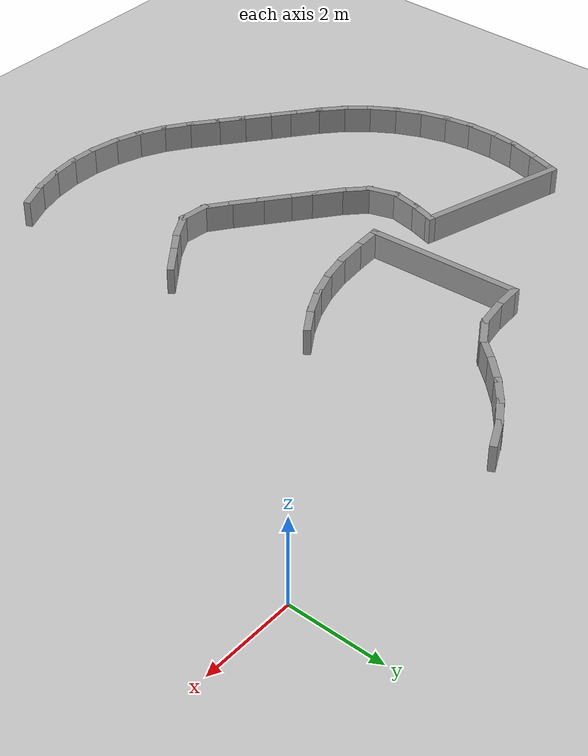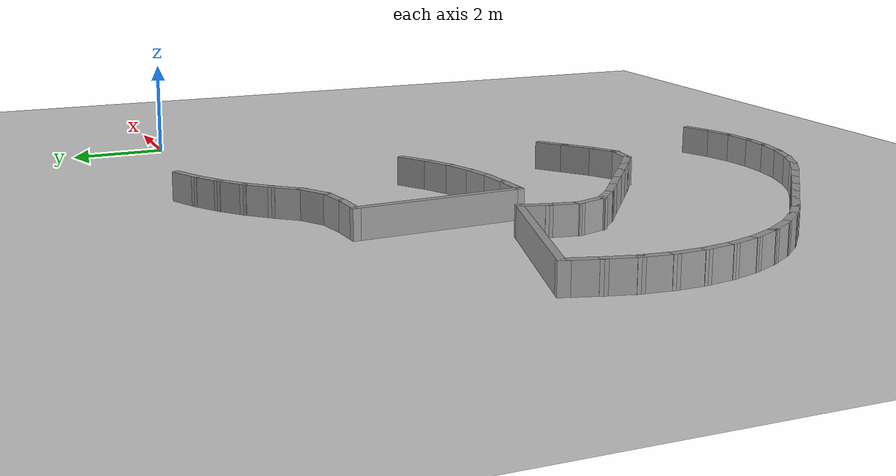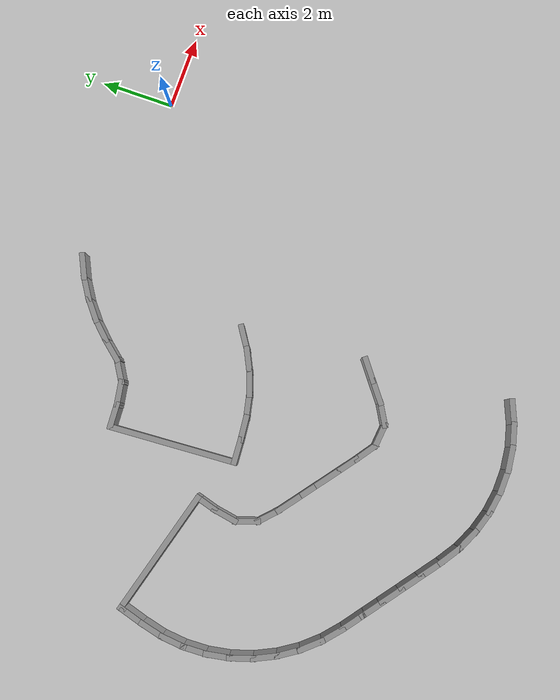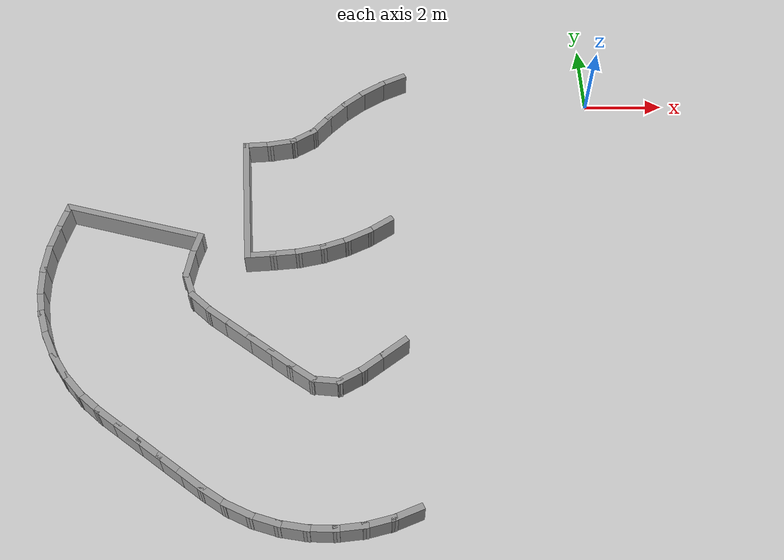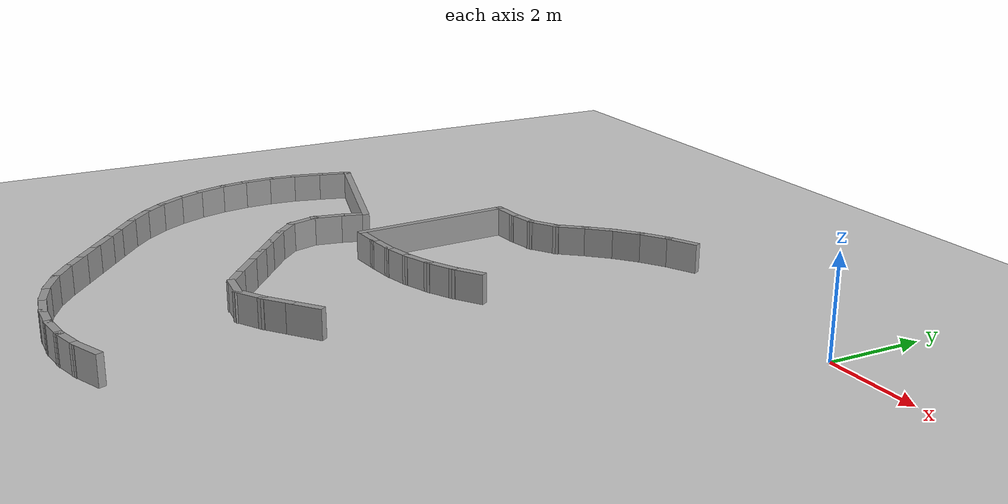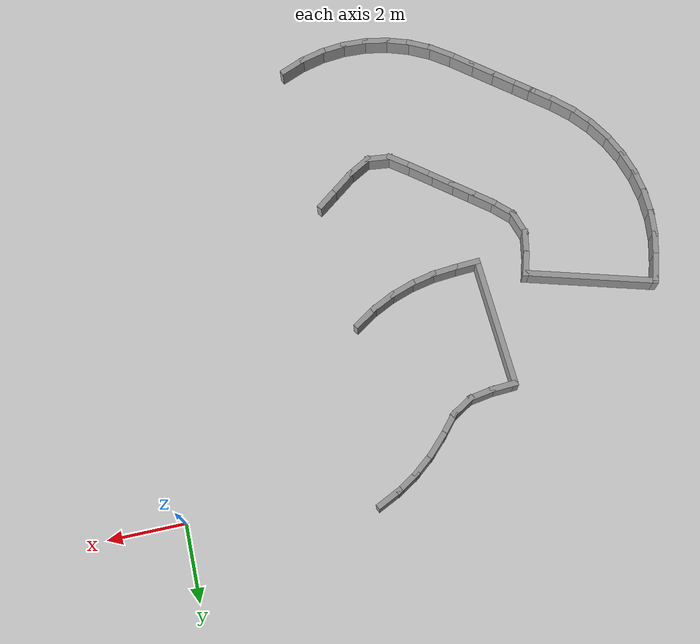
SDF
<sdf version="1.7">
 <world name="default">
  <model name="ground_plane">
   <static>1</static>
   <link name="link">
    <collision name="collision">
     <geometry><plane><normal>0 0 1</normal><size>100 100</size></plane></geometry>
     <surface><friction><ode><mu>100</mu><mu2>50</mu2></ode></friction></surface>
    </collision>
    <visual name="visual">
     <cast_shadows>0</cast_shadows>
     <geometry><plane><normal>0 0 1</normal><size>100 100</size></plane></geometry>
     <material>
      <script><uri>file://media/materials/scripts/gazebo.material</uri><name>Gazebo/Grey</name></script>
     </material>
    </visual>
   </link>
  </model>
  <model name="rand_turn_00">
   <link name="Wall_0">
    <collision name="Wall_0_Collision">
     <geometry><box><size>0.7500 0.1500 0.6000</size></box></geometry>
     <pose>0 0 0.3000 0 -0 0</pose>
    </collision>
    <visual name="Wall_0_Visual">
     <pose>0 0 0.3000 0 -0 0</pose>
     <geometry><box><size>0.7500 0.1500 0.6000</size></box></geometry>
     <material>
      <script><uri>file://media/materials/scripts/gazebo.material</uri><name>Gazebo/Grey</name></script>
      <ambient>1 1 1 1</ambient>
     </material>
    </visual>
    <pose>-8.5441 -1.6204 0 0 -0 0.05897</pose>
   </link>
   <link name="Wall_1">
    <collision name="Wall_1_Collision">
     <geometry><box><size>0.7471 0.1500 0.6000</size></box></geometry>
     <pose>0 0 0.3000 0 -0 0</pose>
    </collision>
    <visual name="Wall_1_Visual">
     <pose>0 0 0.3000 0 -0 0</pose>
     <geometry><box><size>0.7471 0.1500 0.6000</size></box></geometry>
     <material>
      <script><uri>file://media/materials/scripts/gazebo.material</uri><name>Gazebo/Grey</name></script>
      <ambient>1 1 1 1</ambient>
     </material>
    </visual>
    <pose>-7.9503 -1.5525 0 0 -0 0.16929</pose>
   </link>
   <link name="Wall_2">
    <collision name="Wall_2_Collision">
     <geometry><box><size>0.7461 0.1500 0.6000</size></box></geometry>
     <pose>0 0 0.3000 0 -0 0</pose>
    </collision>
    <visual name="Wall_2_Visual">
     <pose>0 0 0.3000 0 -0 0</pose>
     <geometry><box><size>0.7461 0.1500 0.6000</size></box></geometry>
     <material>
      <script><uri>file://media/materials/scripts/gazebo.material</uri><name>Gazebo/Grey</name></script>
      <ambient>1 1 1 1</ambient>
     </material>
    </visual>
    <pose>-7.4023 -1.3457 0 0 -0 0.55249</pose>
   </link>
   <link name="Wall_3">
    <collision name="Wall_3_Collision">
     <geometry><box><size>0.7493 0.1500 0.6000</size></box></geometry>
     <pose>0 0 0.3000 0 -0 0</pose>
    </collision>
    <visual name="Wall_3_Visual">
     <pose>0 0 0.3000 0 -0 0</pose>
     <geometry><box><size>0.7493 0.1500 0.6000</size></box></geometry>
     <material>
      <script><uri>file://media/materials/scripts/gazebo.material</uri><name>Gazebo/Grey</name></script>
      <ambient>1 1 1 1</ambient>
     </material>
    </visual>
    <pose>-6.9553 -0.9603 0 0 -0 0.86976</pose>
   </link>
   <link name="Wall_4">
    <collision name="Wall_4_Collision">
     <geometry><box><size>0.7496 0.1500 0.6000</size></box></geometry>
     <pose>0 0 0.3000 0 -0 0</pose>
    </collision>
    <visual name="Wall_4_Visual">
     <pose>0 0 0.3000 0 -0 0</pose>
     <geometry><box><size>0.7496 0.1500 0.6000</size></box></geometry>
     <material>
      <script><uri>file://media/materials/scripts/gazebo.material</uri><name>Gazebo/Grey</name></script>
      <ambient>1 1 1 1</ambient>
     </material>
    </visual>
    <pose>-6.5543 -0.5152 0 0 -0 0.80530</pose>
   </link>
   <link name="Wall_5">
    <collision name="Wall_5_Collision">
     <geometry><box><size>0.7496 0.1500 0.6000</size></box></geometry>
     <pose>0 0 0.3000 0 -0 0</pose>
    </collision>
    <visual name="Wall_5_Visual">
     <pose>0 0 0.3000 0 -0 0</pose>
     <geometry><box><size>0.7496 0.1500 0.6000</size></box></geometry>
     <material>
      <script><uri>file://media/materials/scripts/gazebo.material</uri><name>Gazebo/Grey</name></script>
      <ambient>1 1 1 1</ambient>
     </material>
    </visual>
    <pose>-6.1148 -0.1088 0 0 -0 0.68736</pose>
   </link>
   <link name="Wall_6">
    <collision name="Wall_6_Collision">
     <geometry><box><size>0.7496 0.1500 0.6000</size></box></geometry>
     <pose>0 0 0.3000 0 -0 0</pose>
    </collision>
    <visual name="Wall_6_Visual">
     <pose>0 0 0.3000 0 -0 0</pose>
     <geometry><box><size>0.7496 0.1500 0.6000</size></box></geometry>
     <material>
      <script><uri>file://media/materials/scripts/gazebo.material</uri><name>Gazebo/Grey</name></script>
      <ambient>1 1 1 1</ambient>
     </material>
    </visual>
    <pose>-5.6306 0.2431 0 0 -0 0.56943</pose>
   </link>
   <link name="Wall_7">
    <collision name="Wall_7_Collision">
     <geometry><box><size>0.7496 0.1500 0.6000</size></box></geometry>
     <pose>0 0 0.3000 0 -0 0</pose>
    </collision>
    <visual name="Wall_7_Visual">
     <pose>0 0 0.3000 0 -0 0</pose>
     <geometry><box><size>0.7496 0.1500 0.6000</size></box></geometry>
     <material>
      <script><uri>file://media/materials/scripts/gazebo.material</uri><name>Gazebo/Grey</name></script>
      <ambient>1 1 1 1</ambient>
     </material>
    </visual>
    <pose>-5.1084 0.5355 0 0 -0 0.45149</pose>
   </link>
   <link name="Wall_42">
    <collision name="Wall_42_Collision">
     <geometry><box><size>0.7495 0.1500 0.6000</size></box></geometry>
     <pose>0 0 0.3000 0 -0 0</pose>
    </collision>
    <visual name="Wall_42_Visual">
     <pose>0 0 0.3000 0 -0 0</pose>
     <geometry><box><size>0.7495 0.1500 0.6000</size></box></geometry>
     <material>
      <script><uri>file://media/materials/scripts/gazebo.material</uri><name>Gazebo/Grey</name></script>
      <ambient>1 1 1 1</ambient>
     </material>
    </visual>
    <pose>-5.0606 -11.4234 0 0 -0 -2.75458</pose>
   </link>
   <link name="Wall_43">
    <collision name="Wall_43_Collision">
     <geometry><box><size>0.7494 0.1500 0.6000</size></box></geometry>
     <pose>0 0 0.3000 0 -0 0</pose>
    </collision>
    <visual name="Wall_43_Visual">
     <pose>0 0 0.3000 0 -0 0</pose>
     <geometry><box><size>0.7494 0.1500 0.6000</size></box></geometry>
     <material>
      <script><uri>file://media/materials/scripts/gazebo.material</uri><name>Gazebo/Grey</name></script>
      <ambient>1 1 1 1</ambient>
     </material>
    </visual>
    <pose>-5.6288 -11.6099 0 0 -0 -2.89441</pose>
   </link>
   <link name="Wall_44">
    <collision name="Wall_44_Collision">
     <geometry><box><size>0.7495 0.1500 0.6000</size></box></geometry>
     <pose>0 0 0.3000 0 -0 0</pose>
    </collision>
    <visual name="Wall_44_Visual">
     <pose>0 0 0.3000 0 -0 0</pose>
     <geometry><box><size>0.7495 0.1500 0.6000</size></box></geometry>
     <material>
      <script><uri>file://media/materials/scripts/gazebo.material</uri><name>Gazebo/Grey</name></script>
      <ambient>1 1 1 1</ambient>
     </material>
    </visual>
    <pose>-6.2175 -11.7149 0 0 -0 -3.03569</pose>
   </link>
   <link name="Wall_45">
    <collision name="Wall_45_Collision">
     <geometry><box><size>0.7495 0.1500 0.6000</size></box></geometry>
     <pose>0 0 0.3000 0 -0 0</pose>
    </collision>
    <visual name="Wall_45_Visual">
     <pose>0 0 0.3000 0 -0 0</pose>
     <geometry><box><size>0.7495 0.1500 0.6000</size></box></geometry>
     <material>
      <script><uri>file://media/materials/scripts/gazebo.material</uri><name>Gazebo/Grey</name></script>
      <ambient>1 1 1 1</ambient>
     </material>
    </visual>
    <pose>-6.8151 -11.7357 0 0 -0 3.10511</pose>
   </link>
   <link name="Wall_46">
    <collision name="Wall_46_Collision">
     <geometry><box><size>0.7495 0.1500 0.6000</size></box></geometry>
     <pose>0 0 0.3000 0 -0 0</pose>
    </collision>
    <visual name="Wall_46_Visual">
     <pose>0 0 0.3000 0 -0 0</pose>
     <geometry><box><size>0.7495 0.1500 0.6000</size></box></geometry>
     <material>
      <script><uri>file://media/materials/scripts/gazebo.material</uri><name>Gazebo/Grey</name></script>
      <ambient>1 1 1 1</ambient>
     </material>
    </visual>
    <pose>-7.4097 -11.6722 0 0 -0 2.96528</pose>
   </link>
   <link name="Wall_47">
    <collision name="Wall_47_Collision">
     <geometry><box><size>0.7495 0.1500 0.6000</size></box></geometry>
     <pose>0 0 0.3000 0 -0 0</pose>
    </collision>
    <visual name="Wall_47_Visual">
     <pose>0 0 0.3000 0 -0 0</pose>
     <geometry><box><size>0.7495 0.1500 0.6000</size></box></geometry>
     <material>
      <script><uri>file://media/materials/scripts/gazebo.material</uri><name>Gazebo/Grey</name></script>
      <ambient>1 1 1 1</ambient>
     </material>
    </visual>
    <pose>-7.9894 -11.5256 0 0 -0 2.82276</pose>
   </link>
   <link name="Wall_48">
    <collision name="Wall_48_Collision">
     <geometry><box><size>0.7494 0.1500 0.6000</size></box></geometry>
     <pose>0 0 0.3000 0 -0 0</pose>
    </collision>
    <visual name="Wall_48_Visual">
     <pose>0 0 0.3000 0 -0 0</pose>
     <geometry><box><size>0.7494 0.1500 0.6000</size></box></geometry>
     <material>
      <script><uri>file://media/materials/scripts/gazebo.material</uri><name>Gazebo/Grey</name></script>
      <ambient>1 1 1 1</ambient>
     </material>
    </visual>
    <pose>-8.5426 -11.2986 0 0 -0 2.68162</pose>
   </link>
   <link name="Wall_49">
    <collision name="Wall_49_Collision">
     <geometry><box><size>0.7495 0.1500 0.6000</size></box></geometry>
     <pose>0 0 0.3000 0 -0 0</pose>
    </collision>
    <visual name="Wall_49_Visual">
     <pose>0 0 0.3000 0 -0 0</pose>
     <geometry><box><size>0.7495 0.1500 0.6000</size></box></geometry>
     <material>
      <script><uri>file://media/materials/scripts/gazebo.material</uri><name>Gazebo/Grey</name></script>
      <ambient>1 1 1 1</ambient>
     </material>
    </visual>
    <pose>-9.0584 -10.9962 0 0 -0 2.54093</pose>
   </link>
   <link name="Wall_50">
    <collision name="Wall_50_Collision">
     <geometry><box><size>0.7500 0.1500 0.6000</size></box></geometry>
     <pose>0 0 0.3000 0 -0 0</pose>
    </collision>
    <visual name="Wall_50_Visual">
     <pose>0 0 0.3000 0 -0 0</pose>
     <geometry><box><size>0.7500 0.1500 0.6000</size></box></geometry>
     <material>
      <script><uri>file://media/materials/scripts/gazebo.material</uri><name>Gazebo/Grey</name></script>
      <ambient>1 1 1 1</ambient>
     </material>
    </visual>
    <pose>-9.5429 -10.6431 0 0 -0 2.48282</pose>
   </link>
   <link name="Wall_51">
    <collision name="Wall_51_Collision">
     <geometry><box><size>0.7500 0.1500 0.6000</size></box></geometry>
     <pose>0 0 0.3000 0 -0 0</pose>
    </collision>
    <visual name="Wall_51_Visual">
     <pose>0 0 0.3000 0 -0 0</pose>
     <geometry><box><size>0.7500 0.1500 0.6000</size></box></geometry>
     <material>
      <script><uri>file://media/materials/scripts/gazebo.material</uri><name>Gazebo/Grey</name></script>
      <ambient>1 1 1 1</ambient>
     </material>
    </visual>
    <pose>-10.0174 -10.2758 0 0 -0 2.48282</pose>
   </link>
   <link name="Wall_52">
    <collision name="Wall_52_Collision">
     <geometry><box><size>0.7500 0.1500 0.6000</size></box></geometry>
     <pose>0 0 0.3000 0 -0 0</pose>
    </collision>
    <visual name="Wall_52_Visual">
     <pose>0 0 0.3000 0 -0 0</pose>
     <geometry><box><size>0.7500 0.1500 0.6000</size></box></geometry>
     <material>
      <script><uri>file://media/materials/scripts/gazebo.material</uri><name>Gazebo/Grey</name></script>
      <ambient>1 1 1 1</ambient>
     </material>
    </visual>
    <pose>-10.4918 -9.9086 0 0 -0 2.48282</pose>
   </link>
   <link name="Wall_53">
    <collision name="Wall_53_Collision">
     <geometry><box><size>0.7500 0.1500 0.6000</size></box></geometry>
     <pose>0 0 0.3000 0 -0 0</pose>
    </collision>
    <visual name="Wall_53_Visual">
     <pose>0 0 0.3000 0 -0 0</pose>
     <geometry><box><size>0.7500 0.1500 0.6000</size></box></geometry>
     <material>
      <script><uri>file://media/materials/scripts/gazebo.material</uri><name>Gazebo/Grey</name></script>
      <ambient>1 1 1 1</ambient>
     </material>
    </visual>
    <pose>-10.9663 -9.5413 0 0 -0 2.48282</pose>
   </link>
   <link name="Wall_54">
    <collision name="Wall_54_Collision">
     <geometry><box><size>0.7500 0.1500 0.6000</size></box></geometry>
     <pose>0 0 0.3000 0 -0 0</pose>
    </collision>
    <visual name="Wall_54_Visual">
     <pose>0 0 0.3000 0 -0 0</pose>
     <geometry><box><size>0.7500 0.1500 0.6000</size></box></geometry>
     <material>
      <script><uri>file://media/materials/scripts/gazebo.material</uri><name>Gazebo/Grey</name></script>
      <ambient>1 1 1 1</ambient>
     </material>
    </visual>
    <pose>-11.4406 -9.1739 0 0 -0 2.48247</pose>
   </link>
   <link name="Wall_55">
    <collision name="Wall_55_Collision">
     <geometry><box><size>0.7496 0.1500 0.6000</size></box></geometry>
     <pose>0 0 0.3000 0 -0 0</pose>
    </collision>
    <visual name="Wall_55_Visual">
     <pose>0 0 0.3000 0 -0 0</pose>
     <geometry><box><size>0.7496 0.1500 0.6000</size></box></geometry>
     <material>
      <script><uri>file://media/materials/scripts/gazebo.material</uri><name>Gazebo/Grey</name></script>
      <ambient>1 1 1 1</ambient>
     </material>
    </visual>
    <pose>-11.9011 -8.7901 0 0 -0 2.41105</pose>
   </link>
   <link name="Wall_56">
    <collision name="Wall_56_Collision">
     <geometry><box><size>0.7495 0.1500 0.6000</size></box></geometry>
     <pose>0 0 0.3000 0 -0 0</pose>
    </collision>
    <visual name="Wall_56_Visual">
     <pose>0 0 0.3000 0 -0 0</pose>
     <geometry><box><size>0.7495 0.1500 0.6000</size></box></geometry>
     <material>
      <script><uri>file://media/materials/scripts/gazebo.material</uri><name>Gazebo/Grey</name></script>
      <ambient>1 1 1 1</ambient>
     </material>
    </visual>
    <pose>-12.3190 -8.3621 0 0 -0 2.27726</pose>
   </link>
   <link name="Wall_57">
    <collision name="Wall_57_Collision">
     <geometry><box><size>0.7495 0.1500 0.6000</size></box></geometry>
     <pose>0 0 0.3000 0 -0 0</pose>
    </collision>
    <visual name="Wall_57_Visual">
     <pose>0 0 0.3000 0 -0 0</pose>
     <geometry><box><size>0.7495 0.1500 0.6000</size></box></geometry>
     <material>
      <script><uri>file://media/materials/scripts/gazebo.material</uri><name>Gazebo/Grey</name></script>
      <ambient>1 1 1 1</ambient>
     </material>
    </visual>
    <pose>-12.6762 -7.8823 0 0 -0 2.14447</pose>
   </link>
   <link name="Wall_58">
    <collision name="Wall_58_Collision">
     <geometry><box><size>0.7495 0.1500 0.6000</size></box></geometry>
     <pose>0 0 0.3000 0 -0 0</pose>
    </collision>
    <visual name="Wall_58_Visual">
     <pose>0 0 0.3000 0 -0 0</pose>
     <geometry><box><size>0.7495 0.1500 0.6000</size></box></geometry>
     <material>
      <script><uri>file://media/materials/scripts/gazebo.material</uri><name>Gazebo/Grey</name></script>
      <ambient>1 1 1 1</ambient>
     </material>
    </visual>
    <pose>-12.9668 -7.3594 0 0 -0 2.01169</pose>
   </link>
   <link name="Wall_59">
    <collision name="Wall_59_Collision">
     <geometry><box><size>0.7496 0.1500 0.6000</size></box></geometry>
     <pose>0 0 0.3000 0 -0 0</pose>
    </collision>
    <visual name="Wall_59_Visual">
     <pose>0 0 0.3000 0 -0 0</pose>
     <geometry><box><size>0.7496 0.1500 0.6000</size></box></geometry>
     <material>
      <script><uri>file://media/materials/scripts/gazebo.material</uri><name>Gazebo/Grey</name></script>
      <ambient>1 1 1 1</ambient>
     </material>
    </visual>
    <pose>-13.1855 -6.8026 0 0 -0 1.87844</pose>
   </link>
   <link name="Wall_60">
    <collision name="Wall_60_Collision">
     <geometry><box><size>0.7495 0.1500 0.6000</size></box></geometry>
     <pose>0 0 0.3000 0 -0 0</pose>
    </collision>
    <visual name="Wall_60_Visual">
     <pose>0 0 0.3000 0 -0 0</pose>
     <geometry><box><size>0.7495 0.1500 0.6000</size></box></geometry>
     <material>
      <script><uri>file://media/materials/scripts/gazebo.material</uri><name>Gazebo/Grey</name></script>
      <ambient>1 1 1 1</ambient>
     </material>
    </visual>
    <pose>-13.3279 -6.2217 0 0 -0 1.74388</pose>
   </link>
   <link name="Wall_61">
    <collision name="Wall_61_Collision">
     <geometry><box><size>0.7495 0.1500 0.6000</size></box></geometry>
     <pose>0 0 0.3000 0 -0 0</pose>
    </collision>
    <visual name="Wall_61_Visual">
     <pose>0 0 0.3000 0 -0 0</pose>
     <geometry><box><size>0.7495 0.1500 0.6000</size></box></geometry>
     <material>
      <script><uri>file://media/materials/scripts/gazebo.material</uri><name>Gazebo/Grey</name></script>
      <ambient>1 1 1 1</ambient>
     </material>
    </visual>
    <pose>-13.3916 -5.6269 0 0 -0 1.61109</pose>
   </link>
   <link name="Wall_62">
    <collision name="Wall_62_Collision">
     <geometry><box><size>0.7495 0.1500 0.6000</size></box></geometry>
     <pose>0 0 0.3000 0 -0 0</pose>
    </collision>
    <visual name="Wall_62_Visual">
     <pose>0 0 0.3000 0 -0 0</pose>
     <geometry><box><size>0.7495 0.1500 0.6000</size></box></geometry>
     <material>
      <script><uri>file://media/materials/scripts/gazebo.material</uri><name>Gazebo/Grey</name></script>
      <ambient>1 1 1 1</ambient>
     </material>
    </visual>
    <pose>-13.3760 -5.0289 0 0 -0 1.47831</pose>
   </link>
   <link name="Wall_63">
    <collision name="Wall_63_Collision">
     <geometry><box><size>0.7496 0.1500 0.6000</size></box></geometry>
     <pose>0 0 0.3000 0 -0 0</pose>
    </collision>
    <visual name="Wall_63_Visual">
     <pose>0 0 0.3000 0 -0 0</pose>
     <geometry><box><size>0.7496 0.1500 0.6000</size></box></geometry>
     <material>
      <script><uri>file://media/materials/scripts/gazebo.material</uri><name>Gazebo/Grey</name></script>
      <ambient>1 1 1 1</ambient>
     </material>
    </visual>
    <pose>-13.2815 -4.4382 0 0 -0 1.34596</pose>
   </link>
   <link name="Wall_64">
    <collision name="Wall_64_Collision">
     <geometry><box><size>0.7500 0.1500 0.6000</size></box></geometry>
     <pose>0 0 0.3000 0 -0 0</pose>
    </collision>
    <visual name="Wall_64_Visual">
     <pose>0 0 0.3000 0 -0 0</pose>
     <geometry><box><size>0.7500 0.1500 0.6000</size></box></geometry>
     <material>
      <script><uri>file://media/materials/scripts/gazebo.material</uri><name>Gazebo/Grey</name></script>
      <ambient>1 1 1 1</ambient>
     </material>
    </visual>
    <pose>-13.1332 -3.8572 0 0 -0 1.29574</pose>
   </link>
   <link name="Wall_65">
    <collision name="Wall_65_Collision">
     <geometry><box><size>0.2202 0.1500 0.6000</size></box></geometry>
     <pose>0 0 0.3000 0 -0 0</pose>
    </collision>
    <visual name="Wall_65_Visual">
     <pose>0 0 0.3000 0 -0 0</pose>
     <geometry><box><size>0.2202 0.1500 0.6000</size></box></geometry>
     <material>
      <script><uri>file://media/materials/scripts/gazebo.material</uri><name>Gazebo/Grey</name></script>
      <ambient>1 1 1 1</ambient>
     </material>
    </visual>
    <pose>-13.0422 -3.5347 0 0 -0 1.29574</pose>
   </link>
   <link name="Wall_66">
    <collision name="Wall_66_Collision">
     <geometry><box><size>0.7500 0.1500 0.6000</size></box></geometry>
     <pose>0 0 0.3000 0 -0 0</pose>
    </collision>
    <visual name="Wall_66_Visual">
     <pose>0 0 0.3000 0 -0 0</pose>
     <geometry><box><size>0.7500 0.1500 0.6000</size></box></geometry>
     <material>
      <script><uri>file://media/materials/scripts/gazebo.material</uri><name>Gazebo/Grey</name></script>
      <ambient>1 1 1 1</ambient>
     </material>
    </visual>
    <pose>-8.3462 -4.9721 0 0 -0 0.05897</pose>
   </link>
   <link name="Wall_67">
    <collision name="Wall_67_Collision">
     <geometry><box><size>0.7497 0.1500 0.6000</size></box></geometry>
     <pose>0 0 0.3000 0 -0 0</pose>
    </collision>
    <visual name="Wall_67_Visual">
     <pose>0 0 0.3000 0 -0 0</pose>
     <geometry><box><size>0.7497 0.1500 0.6000</size></box></geometry>
     <material>
      <script><uri>file://media/materials/scripts/gazebo.material</uri><name>Gazebo/Grey</name></script>
      <ambient>1 1 1 1</ambient>
     </material>
    </visual>
    <pose>-7.7482 -4.9263 0 0 -0 0.09390</pose>
   </link>
   <link name="Wall_68">
    <collision name="Wall_68_Collision">
     <geometry><box><size>0.7496 0.1500 0.6000</size></box></geometry>
     <pose>0 0 0.3000 0 -0 0</pose>
    </collision>
    <visual name="Wall_68_Visual">
     <pose>0 0 0.3000 0 -0 0</pose>
     <geometry><box><size>0.7496 0.1500 0.6000</size></box></geometry>
     <material>
      <script><uri>file://media/materials/scripts/gazebo.material</uri><name>Gazebo/Grey</name></script>
      <ambient>1 1 1 1</ambient>
     </material>
    </visual>
    <pose>-7.1566 -4.8349 0 0 -0 0.21269</pose>
   </link>
   <link name="Wall_69">
    <collision name="Wall_69_Collision">
     <geometry><box><size>0.7496 0.1500 0.6000</size></box></geometry>
     <pose>0 0 0.3000 0 -0 0</pose>
    </collision>
    <visual name="Wall_69_Visual">
     <pose>0 0 0.3000 0 -0 0</pose>
     <geometry><box><size>0.7496 0.1500 0.6000</size></box></geometry>
     <material>
      <script><uri>file://media/materials/scripts/gazebo.material</uri><name>Gazebo/Grey</name></script>
      <ambient>1 1 1 1</ambient>
     </material>
    </visual>
    <pose>-6.5805 -4.6728 0 0 -0 0.33566</pose>
   </link>
   <link name="Wall_70">
    <collision name="Wall_70_Collision">
     <geometry><box><size>0.7496 0.1500 0.6000</size></box></geometry>
     <pose>0 0 0.3000 0 -0 0</pose>
    </collision>
    <visual name="Wall_70_Visual">
     <pose>0 0 0.3000 0 -0 0</pose>
     <geometry><box><size>0.7496 0.1500 0.6000</size></box></geometry>
     <material>
      <script><uri>file://media/materials/scripts/gazebo.material</uri><name>Gazebo/Grey</name></script>
      <ambient>1 1 1 1</ambient>
     </material>
    </visual>
    <pose>-6.0286 -4.4414 0 0 -0 0.45863</pose>
   </link>
   <link name="Wall_71">
    <collision name="Wall_71_Collision">
     <geometry><box><size>0.7496 0.1500 0.6000</size></box></geometry>
     <pose>0 0 0.3000 0 -0 0</pose>
    </collision>
    <visual name="Wall_71_Visual">
     <pose>0 0 0.3000 0 -0 0</pose>
     <geometry><box><size>0.7496 0.1500 0.6000</size></box></geometry>
     <material>
      <script><uri>file://media/materials/scripts/gazebo.material</uri><name>Gazebo/Grey</name></script>
      <ambient>1 1 1 1</ambient>
     </material>
    </visual>
    <pose>-5.5093 -4.1439 0 0 -0 0.58160</pose>
   </link>
   <link name="Wall_90">
    <collision name="Wall_90_Collision">
     <geometry><box><size>0.7500 0.1500 0.6000</size></box></geometry>
     <pose>0 0 0.3000 0 -0 0</pose>
    </collision>
    <visual name="Wall_90_Visual">
     <pose>0 0 0.3000 0 -0 0</pose>
     <geometry><box><size>0.7500 0.1500 0.6000</size></box></geometry>
     <material>
      <script><uri>file://media/materials/scripts/gazebo.material</uri><name>Gazebo/Grey</name></script>
      <ambient>1 1 1 1</ambient>
     </material>
    </visual>
    <pose>-5.2320 -7.5273 0 0 -0 -2.48869</pose>
   </link>
   <link name="Wall_91">
    <collision name="Wall_91_Collision">
     <geometry><box><size>0.7500 0.1500 0.6000</size></box></geometry>
     <pose>0 0 0.3000 0 -0 0</pose>
    </collision>
    <visual name="Wall_91_Visual">
     <pose>0 0 0.3000 0 -0 0</pose>
     <geometry><box><size>0.7500 0.1500 0.6000</size></box></geometry>
     <material>
      <script><uri>file://media/materials/scripts/gazebo.material</uri><name>Gazebo/Grey</name></script>
      <ambient>1 1 1 1</ambient>
     </material>
    </visual>
    <pose>-5.7086 -7.8917 0 0 -0 -2.48869</pose>
   </link>
   <link name="Wall_92">
    <collision name="Wall_92_Collision">
     <geometry><box><size>0.7440 0.1500 0.6000</size></box></geometry>
     <pose>0 0 0.3000 0 -0 0</pose>
    </collision>
    <visual name="Wall_92_Visual">
     <pose>0 0 0.3000 0 -0 0</pose>
     <geometry><box><size>0.7440 0.1500 0.6000</size></box></geometry>
     <material>
      <script><uri>file://media/materials/scripts/gazebo.material</uri><name>Gazebo/Grey</name></script>
      <ambient>1 1 1 1</ambient>
     </material>
    </visual>
    <pose>-6.2047 -8.2215 0 0 -0 -2.62196</pose>
   </link>
   <link name="Wall_93">
    <collision name="Wall_93_Collision">
     <geometry><box><size>0.7386 0.1500 0.6000</size></box></geometry>
     <pose>0 0 0.3000 0 -0 0</pose>
    </collision>
    <visual name="Wall_93_Visual">
     <pose>0 0 0.3000 0 -0 0</pose>
     <geometry><box><size>0.7386 0.1500 0.6000</size></box></geometry>
     <material>
      <script><uri>file://media/materials/scripts/gazebo.material</uri><name>Gazebo/Grey</name></script>
      <ambient>1 1 1 1</ambient>
     </material>
    </visual>
    <pose>-6.7551 -8.3368 0 0 -0 3.03221</pose>
   </link>
   <link name="Wall_94">
    <collision name="Wall_94_Collision">
     <geometry><box><size>0.7489 0.1500 0.6000</size></box></geometry>
     <pose>0 0 0.3000 0 -0 0</pose>
    </collision>
    <visual name="Wall_94_Visual">
     <pose>0 0 0.3000 0 -0 0</pose>
     <geometry><box><size>0.7489 0.1500 0.6000</size></box></geometry>
     <material>
      <script><uri>file://media/materials/scripts/gazebo.material</uri><name>Gazebo/Grey</name></script>
      <ambient>1 1 1 1</ambient>
     </material>
    </visual>
    <pose>-7.2902 -8.1291 0 0 -0 2.51471</pose>
   </link>
   <link name="Wall_95">
    <collision name="Wall_95_Collision">
     <geometry><box><size>0.7500 0.1500 0.6000</size></box></geometry>
     <pose>0 0 0.3000 0 -0 0</pose>
    </collision>
    <visual name="Wall_95_Visual">
     <pose>0 0 0.3000 0 -0 0</pose>
     <geometry><box><size>0.7500 0.1500 0.6000</size></box></geometry>
     <material>
      <script><uri>file://media/materials/scripts/gazebo.material</uri><name>Gazebo/Grey</name></script>
      <ambient>1 1 1 1</ambient>
     </material>
    </visual>
    <pose>-7.7699 -7.7697 0 0 -0 2.48282</pose>
   </link>
   <link name="Wall_96">
    <collision name="Wall_96_Collision">
     <geometry><box><size>0.7500 0.1500 0.6000</size></box></geometry>
     <pose>0 0 0.3000 0 -0 0</pose>
    </collision>
    <visual name="Wall_96_Visual">
     <pose>0 0 0.3000 0 -0 0</pose>
     <geometry><box><size>0.7500 0.1500 0.6000</size></box></geometry>
     <material>
      <script><uri>file://media/materials/scripts/gazebo.material</uri><name>Gazebo/Grey</name></script>
      <ambient>1 1 1 1</ambient>
     </material>
    </visual>
    <pose>-8.2443 -7.4025 0 0 -0 2.48282</pose>
   </link>
   <link name="Wall_97">
    <collision name="Wall_97_Collision">
     <geometry><box><size>0.7500 0.1500 0.6000</size></box></geometry>
     <pose>0 0 0.3000 0 -0 0</pose>
    </collision>
    <visual name="Wall_97_Visual">
     <pose>0 0 0.3000 0 -0 0</pose>
     <geometry><box><size>0.7500 0.1500 0.6000</size></box></geometry>
     <material>
      <script><uri>file://media/materials/scripts/gazebo.material</uri><name>Gazebo/Grey</name></script>
      <ambient>1 1 1 1</ambient>
     </material>
    </visual>
    <pose>-8.7188 -7.0352 0 0 -0 2.48282</pose>
   </link>
   <link name="Wall_98">
    <collision name="Wall_98_Collision">
     <geometry><box><size>0.7500 0.1500 0.6000</size></box></geometry>
     <pose>0 0 0.3000 0 -0 0</pose>
    </collision>
    <visual name="Wall_98_Visual">
     <pose>0 0 0.3000 0 -0 0</pose>
     <geometry><box><size>0.7500 0.1500 0.6000</size></box></geometry>
     <material>
      <script><uri>file://media/materials/scripts/gazebo.material</uri><name>Gazebo/Grey</name></script>
      <ambient>1 1 1 1</ambient>
     </material>
    </visual>
    <pose>-9.1932 -6.6679 0 0 -0 2.48282</pose>
   </link>
   <link name="Wall_99">
    <collision name="Wall_99_Collision">
     <geometry><box><size>0.7463 0.1500 0.6000</size></box></geometry>
     <pose>0 0 0.3000 0 -0 0</pose>
    </collision>
    <visual name="Wall_99_Visual">
     <pose>0 0 0.3000 0 -0 0</pose>
     <geometry><box><size>0.7463 0.1500 0.6000</size></box></geometry>
     <material>
      <script><uri>file://media/materials/scripts/gazebo.material</uri><name>Gazebo/Grey</name></script>
      <ambient>1 1 1 1</ambient>
     </material>
    </visual>
    <pose>-9.6458 -6.2780 0 0 -0 2.37785</pose>
   </link>
   <link name="Wall_100">
    <collision name="Wall_100_Collision">
     <geometry><box><size>0.7431 0.1500 0.6000</size></box></geometry>
     <pose>0 0 0.3000 0 -0 0</pose>
    </collision>
    <visual name="Wall_100_Visual">
     <pose>0 0 0.3000 0 -0 0</pose>
     <geometry><box><size>0.7431 0.1500 0.6000</size></box></geometry>
     <material>
      <script><uri>file://media/materials/scripts/gazebo.material</uri><name>Gazebo/Grey</name></script>
      <ambient>1 1 1 1</ambient>
     </material>
    </visual>
    <pose>-9.9539 -5.7901 0 0 -0 1.88881</pose>
   </link>
   <link name="Wall_101">
    <collision name="Wall_101_Collision">
     <geometry><box><size>0.7463 0.1500 0.6000</size></box></geometry>
     <pose>0 0 0.3000 0 -0 0</pose>
    </collision>
    <visual name="Wall_101_Visual">
     <pose>0 0 0.3000 0 -0 0</pose>
     <geometry><box><size>0.7463 0.1500 0.6000</size></box></geometry>
     <material>
      <script><uri>file://media/materials/scripts/gazebo.material</uri><name>Gazebo/Grey</name></script>
      <ambient>1 1 1 1</ambient>
     </material>
    </visual>
    <pose>-9.9957 -5.2147 0 0 -0 1.39914</pose>
   </link>
   <link name="Wall_102">
    <collision name="Wall_102_Collision">
     <geometry><box><size>0.6779 0.1500 0.6000</size></box></geometry>
     <pose>0 0 0.3000 0 -0 0</pose>
    </collision>
    <visual name="Wall_102_Visual">
     <pose>0 0 0.3000 0 -0 0</pose>
     <geometry><box><size>0.6779 0.1500 0.6000</size></box></geometry>
     <material>
      <script><uri>file://media/materials/scripts/gazebo.material</uri><name>Gazebo/Grey</name></script>
      <ambient>1 1 1 1</ambient>
     </material>
    </visual>
    <pose>-9.8731 -4.6668 0 0 -0 1.29574</pose>
   </link>
   <link name="Wall_103">
    <collision name="Wall_103_Collision">
     <geometry><box><size>3.5075 0.1500 0.6000</size></box></geometry>
     <pose>0 0 0.3000 0 -0 0</pose>
    </collision>
    <visual name="Wall_103_Visual">
     <pose>0 0 0.3000 0 -0 0</pose>
     <geometry><box><size>3.5075 0.1500 0.6000</size></box></geometry>
     <material>
      <script><uri>file://media/materials/scripts/gazebo.material</uri><name>Gazebo/Grey</name></script>
      <ambient>1 1 1 1</ambient>
     </material>
    </visual>
    <pose>-8.7446 -3.3139 0 0 -0 1.62977</pose>
   </link>
   <link name="Wall_104">
    <collision name="Wall_104_Collision">
     <geometry><box><size>3.5075 0.1500 0.6000</size></box></geometry>
     <pose>0 0 0.3000 0 -0 0</pose>
    </collision>
    <visual name="Wall_104_Visual">
     <pose>0 0 0.3000 0 -0 0</pose>
     <geometry><box><size>3.5075 0.1500 0.6000</size></box></geometry>
     <material>
      <script><uri>file://media/materials/scripts/gazebo.material</uri><name>Gazebo/Grey</name></script>
      <ambient>1 1 1 1</ambient>
     </material>
    </visual>
    <pose>-11.4170 -3.9569 0 0 -0 -0.27506</pose>
   </link>
   <static>1</static>
  </model>
 </world>
</sdf>
